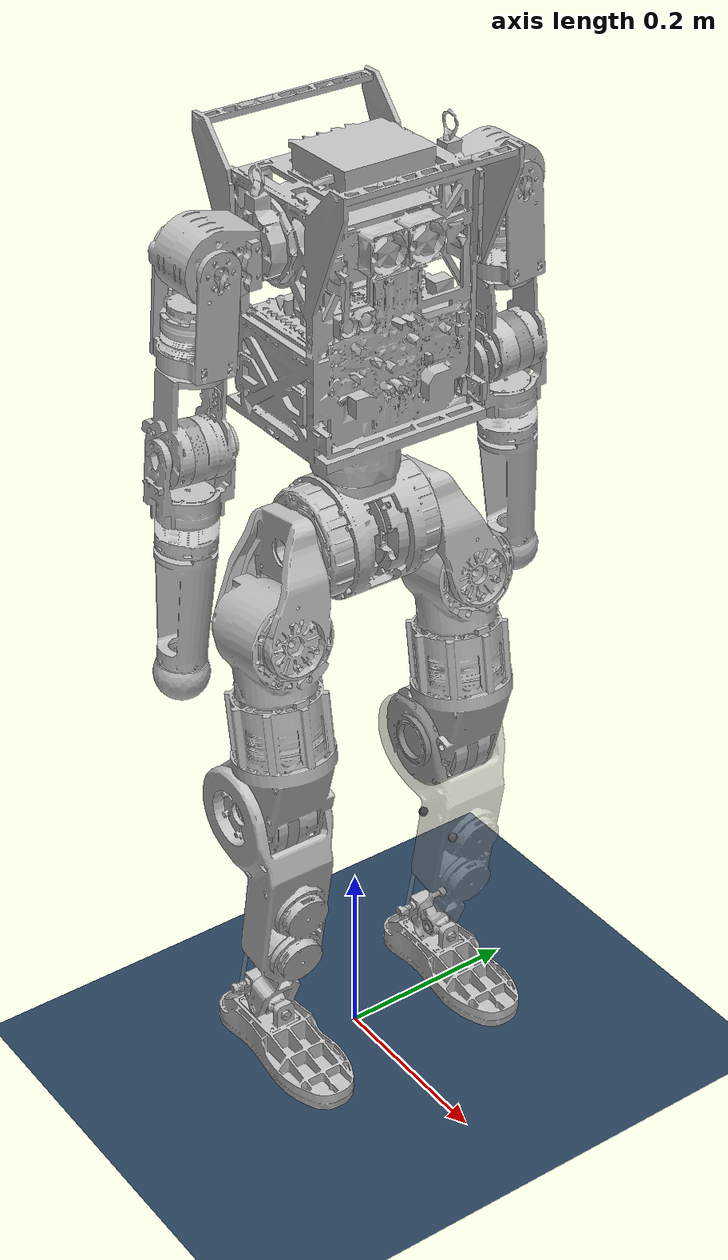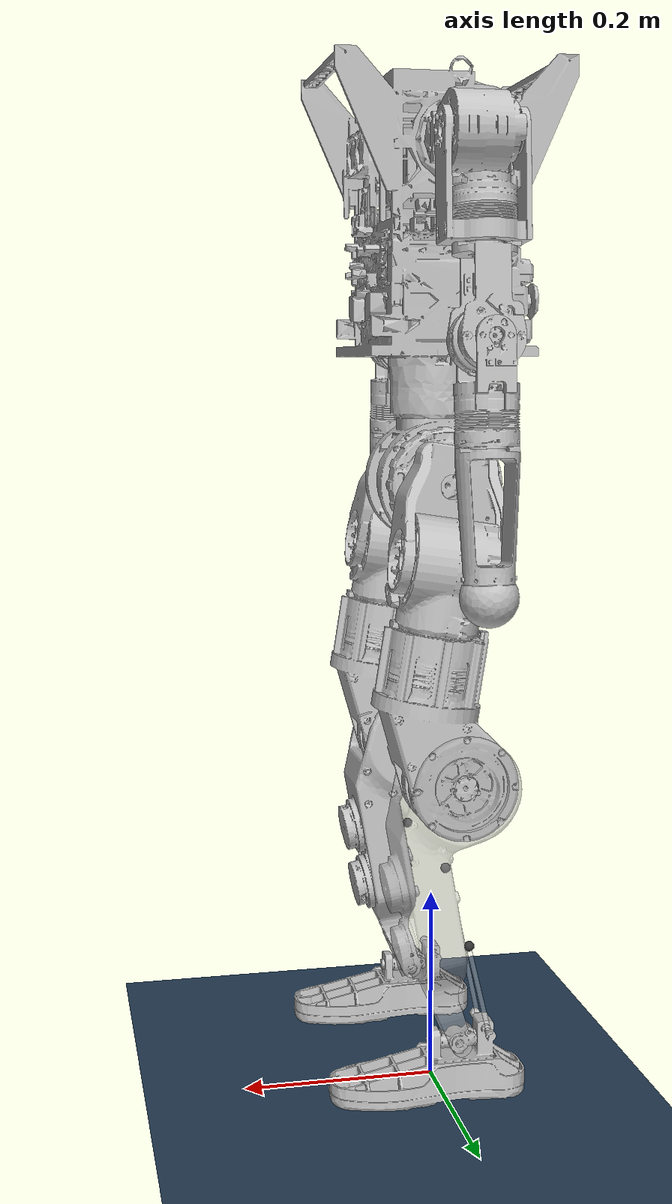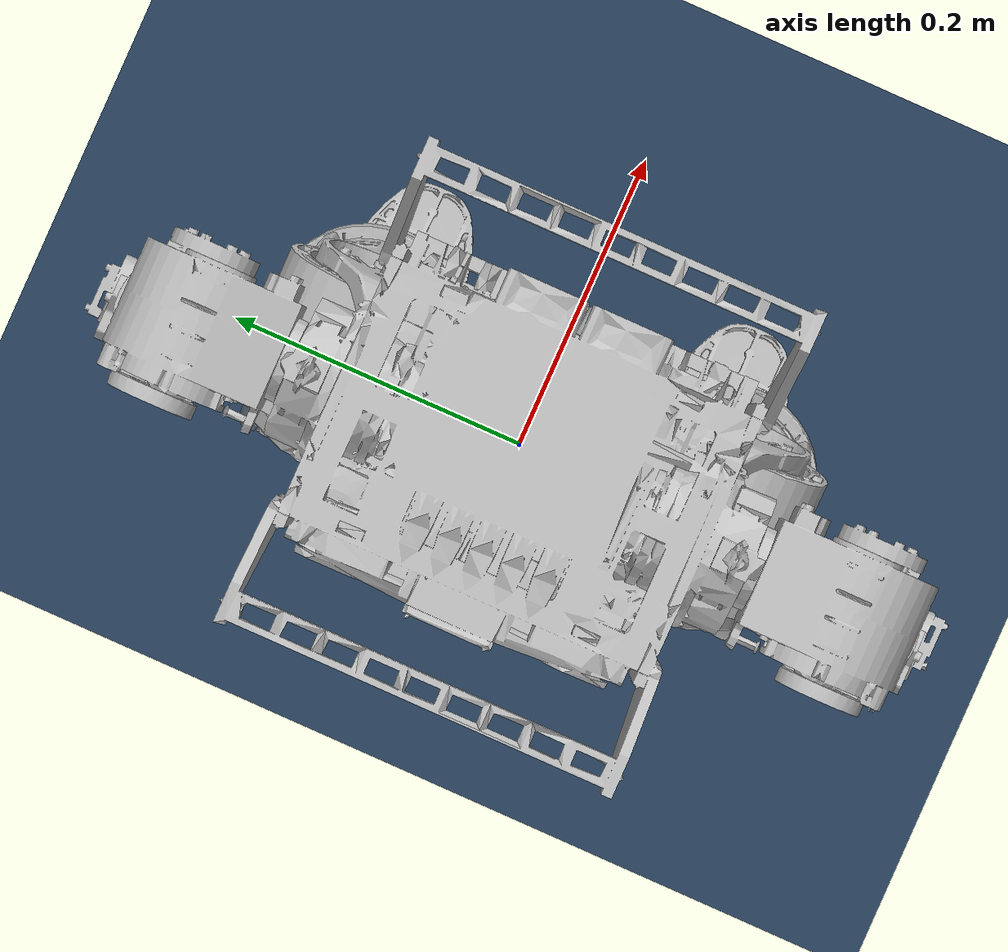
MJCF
<mujoco model="minim1 scene">
  <include file="Mini_M1v1_real.xml"/>

  <statistic center="0.5 0.5 1.2" extent="1.0"/>

  <visual>
    <headlight diffuse="0.6 0.6 0.6" ambient="0.3 0.3 0.3" specular="0 0 0"/>
    <rgba haze="0.15 0.25 0.35 1"/>
    <global azimuth="-130" elevation="-20"/>
  </visual>

  <asset>
    <texture type="skybox" builtin="gradient" rgb1="0.3 0.5 0.7" rgb2="0 0 0" width="512" height="3072"/>
    <texture type="2d" name="groundplane" builtin="checker" mark="edge" rgb1="0.2 0.3 0.4" rgb2="0.1 0.2 0.3"
      markrgb="0.8 0.8 0.8" width="300" height="300"/>
    <material name="groundplane" texture="groundplane" texuniform="true" texrepeat="5 5" reflectance="0.2"/>
  </asset>

  <worldbody>
    <light pos="0 0 1.5" dir="0 0 -1" directional="true"/>
    <geom name="floor" size="0 0 0.05" type="plane" material="groundplane" friction="1.0 0.01 0.001"/>
  </worldbody>
</mujoco>

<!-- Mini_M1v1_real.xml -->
<mujoco model="MiniV1-1_2">
  <compiler angle="radian" meshdir="meshes_reduce/" />
  <option timestep="0.0002" />
  <default>
    <default class="m2">
      <default class="visual">
        <geom type="mesh" contype="0" conaffinity="0" group="2" density="0" material="silver"/>
      </default>
      <default class="collision">
        <geom group="3" rgba="0.2 0.6 0.2 0.5" type="capsule" contype="1" conaffinity="1"/>
        <default class="foot_capsule">
          <geom type="capsule" size="0.01"/>
        </default>
      </default>
      <site group="5" rgba="1 0 0 1"/>
    </default>
  </default>
  <asset>
    <material name="silver" rgba="0.752941 0.752941 0.752941 1"/>
    <material name="black" rgba="0.3 0.3 0.3 1"/>

    <mesh name="pelvis_link" file="pelvis_link.STL" />

    <mesh name="left_hip_pitch_link" file="left_hip_pitch_link.STL" />
    <mesh name="left_hip_roll_link" file="left_hip_roll_link.STL" />
    <mesh name="left_hip_yaw_link" file="left_hip_yaw_link.STL" />
    <mesh name="left_knee_link" file="left_knee_link.STL" />
    <mesh name="left_ankle_pitch_link" file="left_ankle_pitch_link.STL" />
    <mesh name="left_ankle_roll_link" file="left_ankle_roll_link.STL" />

    <mesh name="right_hip_pitch_link" file="right_hip_pitch_link.STL" />
    <mesh name="right_hip_roll_link" file="right_hip_roll_link.STL" />
    <mesh name="right_hip_yaw_link" file="right_hip_yaw_link.STL" />
    <mesh name="right_knee_link" file="right_knee_link.STL" />
    <mesh name="right_ankle_pitch_link" file="right_ankle_pitch_link.STL" />
    <mesh name="right_ankle_roll_link" file="right_ankle_roll_link.STL" />

    <mesh name="torso_link" file="torso_link.STL" />
    <mesh name="left_shoulder_pitch_link" file="left_shoulder_pitch_link.STL" />
    <mesh name="left_shoulder_roll_link" file="left_shoulder_roll_link.STL" />
    <mesh name="left_shoulder_yaw_link" file="left_shoulder_yaw_link.STL" />
    <mesh name="left_elbow_link" file="left_elbow_link.STL" />
    <mesh name="left_wrist_yaw_link" file="left_wrist_yaw_link.STL"/>

    <mesh name="right_shoulder_pitch_link" file="right_shoulder_pitch_link.STL" />
    <mesh name="right_shoulder_roll_link" file="right_shoulder_roll_link.STL" />
    <mesh name="right_shoulder_yaw_link" file="right_shoulder_yaw_link.STL" />
    <mesh name="right_elbow_link" file="right_elbow_link.STL" />
    <mesh name="right_wrist_yaw_link" file="right_wrist_yaw_link.STL"/>
  </asset>

  <default>
    <default class="RS04_motor">
      <joint damping="0.05" armature="0.04" frictionloss="1.8" solimplimit="0.95 0.99 0.001" solreflimit="0.002 1"  limited="true" />
    </default>
    <default class="RS03_motor">
      <joint damping="0.05" armature="0.02"  frictionloss="0.9" solimplimit="0.95 0.99 0.001" solreflimit="0.002 1"  limited="true" />
    </default>
    <default class="RS06_motor">
      <joint damping="0.05" armature="0.012" frictionloss="0.5" solimplimit="0.95 0.99 0.001" solreflimit="0.002 1"  limited="true" />
    </default>
    <default class="RS00_motor">
      <joint damping="0.05" armature="0.001" frictionloss="0.15" solimplimit="0.95 0.99 0.001" solreflimit="0.002 1"  limited="true" />
    </default>
    <default class="RS05_motor">
      <joint damping="0.05" armature="0.0007" frictionloss="0.08" solimplimit="0.95 0.99 0.001" solreflimit="0.002 1"  limited="true" />
    </default>
    <default class="passive_joint">
      <joint damping="0.01" armature="0.0" frictionloss="0.0" solimplimit="0.95 0.99 0.001" solreflimit="0.002 1"  limited="true" />
    </default>
  </default>

  <worldbody>
    <body name="pelvis_link" pos="0 0 0.7" childclass="m2">
      <inertial pos="-7.04e-06 0 -0.0639753" quat="0.7057301 0.7046142 0.051838 -0.0526931" mass="3.256" diaginertia="0.0079273 0.0077761 0.0071866"/>
      <joint name="floating_base_joint" type="free" limited="false" actuatorfrclimited="false" />
      <geom class="visual" mesh="pelvis_link"/>
      <geom name="pelvis_collision" pos="0 0 -0.065" class="collision" type="sphere" size="0.065"/>

      <site name="imu" size="0.01" pos="0.0 0.0 -0.122" />

    <body name="left_hip_pitch_link" pos="0 0.0645 -0.06475">
      <inertial pos="0.0121766 0.0395787 -0.0603924" quat="0.8412368 -0.1359165 0.1585852 0.4986964" mass="1.599" diaginertia="0.0036854 0.0032082 0.0020596"/>
      <joint name="left_hip_pitch_joint" pos="0 0 0" axis="0 -1 0" range="-2.9105 2.67456" class="RS04_motor" />
      <geom class="visual" mesh="left_hip_pitch_link"/>

      <body name="left_hip_roll_link" pos="0.01176 0.0455 -0.074072" quat="0.9969032 0 -0.0786387 0">
        <inertial pos="-0.0003054 0 -0.0300273" quat="0.4975255 0.5024623 0.5024623 0.4975255" mass="0.43" diaginertia="0.0011643 0.0009877 0.0007031"/>
          <joint name="left_hip_roll_joint" pos="0 0 0" axis="-1 0 0" range="-2.26893 0.5236" class="RS04_motor" />
          <geom class="visual" mesh="left_hip_roll_link"/>
          <geom name="left_hip_collision" class="collision" size="0.045" fromto="0.00 0.0 0.005 0.00 0.0 -0.12"/>

          <body name="left_hip_yaw_link" pos="0 0 -0.076">
            <inertial pos="-0.0179351 -0.0003662 -0.0780697" quat="0.7166074 -0.1417192 -0.1565716 0.6647366" mass="2.65639" diaginertia="0.0111069 0.0105039 0.0035003"/>
            <joint name="left_hip_yaw_joint" pos="0 0 0" axis="0 0 1" range="-2.44346 2.44346" class="RS03_motor" />
            <geom class="visual" mesh="left_hip_yaw_link"/>
            <geom name="left_thigh_collision" pos="0.022 0.0 -0.11" euler ="0 0.5 0" class="collision" type="box" size="0.005 0.03 0.03" />

            <body name="left_knee_link" pos="-0.045 0 -0.13245" quat="0.9969032 0 0.0786387 0">
              <inertial pos="0.0218609 0 -0.0908802" quat="0.9995181 -0.0007215 0.0308954 -0.002931" mass="2.25568" diaginertia="0.013668 0.013413 0.0027884"/>
              <joint name="left_knee_joint" pos="0 0 0" axis="0 -1 0" range="-2.70526 0.19199" class="RS04_motor" />
              <geom class="visual" mesh="left_knee_link" rgba="0.7 0.7 0.7 0.5"/>
              <geom name="left_knee_collision" euler="1.5707 0 0" class="collision" type="cylinder" size="0.048 0.045"/>
              <geom name="left_knee_collision2" pos="0.052 0 -0.04" euler="0 0.2 0" class="collision" type="box" size="0.005 0.042 0.015"/>
              <geom name="left_shin_collision" class="collision" size="0.042" fromto="0.035 0.0 -0.095 0.018 0.0 -0.18"/>
              <geom name="left_shin_collision2" class="collision" size="0.02" fromto="0.0065 0.0 -0.245 0.0045 0.0 -0.26"/>

              <body name="left_ankle_motor_1_link" pos="0.00603711 0.0 -0.09401987" quat = "-0.02128223 0.99596734 -0.00186195 -0.08713585" >
                <inertial pos="0 0 0" quat="1 0 0 0" mass="0.05" diaginertia="1e-05 1e-05 1e-05"/>
                <joint name="left_ankle_motor_1_joint" pos="0 0 0" axis="1 0 0" range="-1.055 2" class="RS06_motor"/>
                <geom name="left_anchor_point_1" contype="0" conaffinity="0" size="0.005" pos="0.0 0.025 0.0" rgba="0.2 0.2 0.2 1" />
                <body name="left_ankle_long_rod" pos="0 0.02 0" quat = "0.70656452 -0.00258065 -0.0276871 -0.70710207">
                  <joint name="left-anchor_joint_1" pos="0.0 0.0 0.0" type="ball" damping="0.0" />
                  <geom type="cylinder" contype="0" conaffinity="0" size="0.0025 0.08" pos = "0.0 0.0 0.08" rgba="1 1 1 0.3"/>
                </body>
              </body>

              <body name="left_ankle_motor_2_link" pos="-0.00543289 0.0 -0.15900987" quat = "0.99586461 -0.02564267 0.08712686 0.00224344" >
                <inertial pos="0 0 0" quat="1 0 0 0" mass="0.05" diaginertia="1e-05 1e-05 1e-05"/>
                <joint name="left_ankle_motor_2_joint" pos="0 0 0" axis="1 0 0" range="-2 1.029" class="RS06_motor"/>
                <geom name="left_anchor_point_2" contype="0" conaffinity="0" size="0.005" pos="0.0 0.025  0.0" rgba="0.2 0.2 0.2 1" />
                <body name="left_ankle_short_rod" pos="-0.0 0.02 0" quat = "-0.00279279 -0.70601341 0.70710127 0.03930729">
                  <joint name="left-anchor_joint_2" pos="0.0 0.0 0.0" type="ball" damping="0.0"/>
                  <geom type="cylinder" contype="0" conaffinity="0" size="0.0025 0.048" pos = "0.0 0.0 0.048" rgba="1 1 1 0.3"/>
                </body>
              </body>

              <body name="left_ankle_pitch_link" pos="0 0 -0.265">
                <inertial pos="0 0 0" quat="0 0.7071068 0 0.7071068" mass="0.07679" diaginertia="1.292e-05 1.214e-05 4.67e-06"/>
                <joint name="left_ankle_pitch_joint" pos="0 0 0" axis="0 1 0" range="-0.87266 0.5236" class="passive_joint" />
                <geom class="visual" mesh="left_ankle_pitch_link"/>

                <body name="left_ankle_roll_link">
                  <inertial pos="-0.0003431 0 -0.0205564" quat="0.5506354 0.4436072 0.4437003 0.5505846" mass="0.62798" diaginertia="0.0008024 0.0007779 0.0002549"/>
                  <joint name="left_ankle_roll_joint" pos="0 0 0" axis="1 0 0" range="-0.2618 0.2618" class="passive_joint"/>
                  <geom class="visual" mesh="left_ankle_roll_link"/>
                  <geom name="left_foot1_collision" class="foot_capsule" fromto="-0.05 -0.018 -0.035 0.08 -0.018 -0.035"/>
                  <geom name="left_foot2_collision" class="foot_capsule" fromto="-0.05 -0.009 -0.035 0.085 -0.009 -0.035"/>
                  <geom name="left_foot3_collision" class="foot_capsule" fromto="-0.05 0.0 -0.035 0.085 0.0 -0.035"/>
                  <geom name="left_foot4_collision" class="foot_capsule" fromto="-0.05 0.009 -0.035 0.085 0.009 -0.035"/>
                  <geom name="left_foot5_collision" class="foot_capsule" fromto="-0.05 0.018 -0.035 0.08 0.018 -0.035"/>
                </body>
              </body>
            </body>
          </body>
        </body>
      </body>
      <body name="right_hip_pitch_link" pos="0 -0.0645 -0.06475">
        <inertial pos="0.0121766 -0.0395787 -0.0603924" quat="0.4939296 0.1578684 -0.1367706 0.8440408" mass="1.599" diaginertia="0.0037011 0.0032296 0.0020721"/>
        <joint name="right_hip_pitch_joint" pos="0 0 0" axis="0 1 0" range="-2.67419 2.91086" class="RS04_motor" />
        <geom class="visual" mesh="right_hip_pitch_link"/>

        <body name="right_hip_roll_link" pos="0.01176 -0.0455 -0.074072" quat="0.9969032 0 -0.0786387 0">
          <inertial pos="-0.0003054 0 -0.0300273" quat="0.4975255 0.5024623 0.5024623 0.4975255" mass="0.43" diaginertia="0.0011643 0.0009877 0.0007031"/>
          <joint name="right_hip_roll_joint" pos="0 0 0" axis="-1 0 0" range="-0.5236 2.26893" class="RS04_motor" />
          <geom class="visual" mesh="right_hip_roll_link"/>
          <geom name="right_hip_collision" class="collision" size="0.045" fromto="0.00 0.0 0.005 0.00 0.0 -0.12"/>

          <body name="right_hip_yaw_link" pos="0 0 -0.076">
            <inertial pos="-0.0179351 -0.0003662 -0.0780697" quat="0.7166074 -0.1417192 -0.1565716 0.6647366" mass="2.65639" diaginertia="0.0111069 0.0105039 0.0035003"/>
            <joint name="right_hip_yaw_joint" pos="0 0 0" axis="0 0 1" range="-2.44346 2.44346" class="RS03_motor" />
            <geom class="visual" mesh="right_hip_yaw_link"/>
            <geom name="right_thigh_collision" pos="0.022 0.0 -0.11" euler ="0 0.5 0" class="collision" type="box" size="0.005 0.03 0.03" />

            <body name="right_knee_link" pos="-0.045 0 -0.13245" quat="0.9969032 0 0.0786387 0">
              <inertial pos="0.0218594 0 -0.0908886" quat="0.9995192 0.0007193 0.0308614 0.002915" mass="2.25568" diaginertia="0.0137054 0.0134502 0.0028247"/>
              <joint name="right_knee_joint" pos="0 0 0" axis="0 1 0" range="-0.19199 2.70526" class="RS04_motor" />
              <geom class="visual" mesh="right_knee_link"/>
              <geom name="right_knee_collision" euler="1.5707 0 0" class="collision" type="cylinder" size="0.048 0.045"/>
              <geom name="right_knee_collision2" pos="0.052 0 -0.04" euler="0 0.2 0" class="collision" type="box" size="0.005 0.042 0.015"/>
              <geom name="right_shin_collision" class="collision" size="0.042" fromto="0.035 0.0 -0.095 0.018 0.0 -0.18"/>
              <geom name="right_shin_collision2" class="collision" size="0.02" fromto="0.0065 0.0 -0.245 0.0045 0.0 -0.26"/>

              <body name="right_ankle_motor_1_link" pos="0.00603711 0.0 -0.09401987" quat = "0.99596734 -0.02128223 0.08713585 0.00186195" >
                <inertial pos="0 0 0" quat="1 0 0 0" mass="0.05" diaginertia="1e-05 1e-05 1e-05"/>
                <joint name="right_ankle_motor_1_joint" pos="0 0 0" axis="1 0 0" range="-1.6 1.0" class="RS06_motor"/>
                <geom name="right_anchor_point_1" contype="0" conaffinity="0" size="0.005" pos="0.0 0.025 0.0" rgba="0.2 0.2 0.2 1" />
                <body name="right_ankle_long_rod" pos="0.0 0.02 0.0" quat = "0.00258065 -0.70656452 0.70710207 0.0276871">
                  <joint name="right-anchor_joint_1" pos="0.0 0.0 0.0"  type="ball" damping="0.0"/>
                  <geom type="cylinder" contype="0" conaffinity="0" size="0.0025 0.08" pos="0.0 0.0 0.08" rgba="1 1 1 0.3"/>
                </body>
              </body>

              <body name="right_ankle_motor_2_link" pos="-0.00543289 0.0 -0.15900987" quat = "-0.02564267 0.99586461 -0.00224344 -0.08712686">
                <inertial pos="0 0 0" quat="1 0 0 0" mass="0.05" diaginertia="1e-05 1e-05 1e-05"/>
                <joint name="right_ankle_motor_2_joint" pos="0 0 0" axis="1 0 0" range="-1.0 1.6" class="RS06_motor"/>
                <geom name="right_anchor_point_2" contype="0" conaffinity="0" size="0.005" pos="0.0 0.025  0.0" rgba="0.2 0.2 0.2 1" />
                <body name="right_ankle_short_rod" pos="0.0 0.02 0.0" quat = "0.70601341 0.00279279 -0.03930729 -0.70710127">
                  <joint name="right-anchor_joint_2" pos="0.0 0.0 0.0" type="ball" damping="0.0"/>
                  <geom type="cylinder" contype="0" conaffinity="0" size="0.0025 0.048" pos = "0.0 0.0 0.048" rgba="1 1 1 0.3"/>
                </body>
              </body>

              <body name="right_ankle_pitch_link" pos="0 0 -0.265">
                <inertial pos="0 0 0" quat="0 0.7071068 0 0.7071068" mass="0.07679" diaginertia="1.292e-05 1.214e-05 4.67e-06"/>
                <joint name="right_ankle_pitch_joint" pos="0 0 0" axis="0 1 0" range="-0.87266 0.5236" class="passive_joint"/>
                <geom class="visual" mesh="right_ankle_pitch_link"/>

                <body name="right_ankle_roll_link">
                  <inertial pos="-0.0003427 0 -0.0205569" quat="0.5506331 0.4436453 0.443674 0.5505774" mass="0.62797" diaginertia="0.0008024 0.0007779 0.0002548"/>
                  <joint name="right_ankle_roll_joint" pos="0 0 0" axis="1 0 0" range="-0.2618 0.2618" class="passive_joint"/>
                  <geom class="visual" mesh="right_ankle_roll_link"/>
                  <geom name="right_foot1_collision" class="foot_capsule" fromto="-0.05 -0.018 -0.035 0.08 -0.018 -0.035"/>
                  <geom name="right_foot2_collision" class="foot_capsule" fromto="-0.05 -0.009 -0.035 0.085 -0.009 -0.035"/>
                  <geom name="right_foot3_collision" class="foot_capsule" fromto="-0.05 0.0 -0.035 0.085 0.0 -0.035"/>
                  <geom name="right_foot4_collision" class="foot_capsule" fromto="-0.05 0.009 -0.035 0.085 0.009 -0.035"/>
                  <geom name="right_foot5_collision" class="foot_capsule" fromto="-0.05 0.018 -0.035 0.08 0.018 -0.035"/>
                </body>
              </body>
            </body>
          </body>
        </body>
      </body>
      <body name="torso_link" pos="0 0 0">
        <inertial pos="-0.0057874 -0.0001375 0.1582107" quat="0.9998963 -0.0006793 -0.0143572 -0.0009131" mass="7.957" diaginertia="0.0799016 0.0676421 0.0259355"/>
        <joint name="waist_joint" pos="0 0 0" axis="0 0 -1" range="-2.79252 2.79252" class="RS03_motor" />
        <geom class="visual" mesh="torso_link"/>
        <geom name="torso_collision" class="collision" type="box" size="0.08 0.1 0.125" pos="0 0 0.185"/>
        <geom name="torso_connect_collision" class="collision" type="cylinder" size="0.05 0.025" pos="0 0 0.03"/>

        <body name="left_shoulder_pitch_link" pos="0 0.1145 0.262">
          <inertial pos="-0.0016388 0.0465983 9.687e-05" quat="0.5512101 0.422823 -0.5669166 0.4427117" mass="0.815" diaginertia="0.0003775 0.0003006 0.0002276"/>
          <joint name="left_shoulder_pitch_joint" pos="0 0 0" axis="0 -1 0" range="-2.44346 3.14159" class="RS06_motor" />
          <geom class="visual" mesh="left_shoulder_pitch_link"/>

          <body name="left_shoulder_roll_link" pos="0 0.0525 0" quat="0.999229 0.0392599 0 0">
            <inertial pos="-0.0037489 0 -0.0677716" quat="0.703235 -0.074283 -0.0744955 0.7031308" mass="0.908" diaginertia="0.0006071 0.0004896 0.0002621"/>
            <joint name="left_shoulder_roll_joint" pos="0 0 0" axis="-1 0 0" range="-3.35103 0.20944" class="RS06_motor" />
            <geom class="visual" mesh="left_shoulder_roll_link"/>

            <body name="left_shoulder_yaw_link" pos="-0.00445 0 -0.1005">
              <inertial pos="-0.0001083 0.002638 -0.0736062" quat="0.9999795 0.0028441 -0.0056822 -0.0008463" mass="1.043" diaginertia="0.0010392 0.00091 0.0003354"/>
              <joint name="left_shoulder_yaw_joint" pos="0 0 0" axis="0 0 1" range="-2.44346 2.44346" class="RS06_motor" />
              <geom class="visual" mesh="left_shoulder_yaw_link"/>
              <geom name="left_shoulder_yaw_collision" class="collision" size="0.031" fromto="0.00 0.0 -0.085 0.00 0.0 0.1"/>

              <body name="left_elbow_link" pos="0 0 -0.08575">
                <inertial pos="-0.0001013 0.0008858 -0.0659587" quat="0.9929388 0.1185092 -0.00443 0.0028945" mass="0.573" diaginertia="0.0004153 0.0003379 0.0001735"/>
                <joint name="left_elbow_joint" pos="0 0 0" axis="0 -1 0" range="-1.5708 2.26893" class="RS06_motor" />
                <geom class="visual" mesh="left_elbow_link"/>
                <geom name="left_elbow_yaw_collision" class="collision" size="0.022" fromto="0.0 0.0 -0.23 0.0 0.0 -0.06"/>

                <body name="left_wrist_yaw_link" pos="0 0 -0.09975">
                  <inertial pos="0.0002026 0 -0.0650613" quat="0.707104 -0.0019687 -0.0019687 0.707104" mass="0.422" diaginertia="0.0012001 0.0011344 0.0001592"/>
                  <joint name="left_wrist_yaw_joint" pos="0 0 0" axis="0 0 1" range="-2.44346 2.44346" class="RS06_motor"/>
                  <geom class="visual" mesh="left_wrist_yaw_link"/>
                </body>
              </body>
            </body>
          </body>
        </body>

        <body name="right_shoulder_pitch_link" pos="0 -0.1145 0.262">
          <inertial pos="-0.0016388 -0.0465983 9.687e-05" quat="0.4222955 0.5506507 -0.4432103 0.5674636" mass="0.815" diaginertia="0.0003775 0.0003006 0.0002276"/>
          <joint name="right_shoulder_pitch_joint" pos="0 0 0" axis="0 1 0" range="-3.14159 2.44346" class="RS06_motor" />
          <geom class="visual" mesh="right_shoulder_pitch_link"/>

          <body name="right_shoulder_roll_link" pos="0 -0.0525 0" quat="0.999229 -0.0392599 0 0">
            <inertial pos="-0.0037489 0 -0.0677716" quat="0.703235 -0.074283 -0.0744955 0.7031308" mass="0.908" diaginertia="0.0006071 0.0004896 0.0002621"/>
            <joint name="right_shoulder_roll_joint" pos="0 0 0" axis="-1 0 0" range="-0.20944 3.35103" class="RS06_motor" />
            <geom class="visual" mesh="right_shoulder_roll_link"/>

            <body name="right_shoulder_yaw_link" pos="-0.00445 0 -0.1005">
              <inertial pos="-0.0001083 -0.002638 -0.0736062" quat="0.9999799 -0.0028377 -0.0056765 7.281162e-05" mass="1.043" diaginertia="0.0010392 0.00091 0.0003354"/>
              <joint name="right_shoulder_yaw_joint" pos="0 0 0" axis="0 0 1" range="-2.44346 2.44346" class="RS06_motor" />
              <geom class="visual" mesh="right_shoulder_yaw_link"/>
              <geom name="right_shoulder_yaw_collision" class="collision" size="0.031" fromto="0.00 0.0 -0.085 0.00 0.0 0.1"/>

              <body name="right_elbow_link" pos="0 0 -0.08575">
                <inertial pos="-0.0001013 -0.0008858 -0.0659587" quat="0.9929399 -0.1185121 -0.0041907 -0.0027548" mass="0.573" diaginertia="0.0004153 0.0003379 0.0001735"/>
                <joint name="right_elbow_joint" pos="0 0 0" axis="0 1 0" range="-2.26893 1.5708" class="RS06_motor" />
                <geom class="visual" mesh="right_elbow_link"/>
                <geom name="right_elbow_yaw_collision" class="collision" size="0.022" fromto="0.0 0.0 -0.23 0.0 0.0 -0.06"/>

                <body name="right_wrist_yaw_link" pos="0 0 -0.09975">
                  <inertial pos="0.0002026 0 -0.0650613" quat="0.707104 -0.0019687 -0.0019687 0.707104" mass="0.422" diaginertia="0.0012001 0.0011344 0.0001592"/>
                  <joint name="right_wrist_yaw_joint" pos="0 0 0" axis="0 0 1" range="-2.44346 2.44346" class="RS06_motor"/>
                  <geom class="visual" mesh="right_wrist_yaw_link"/>
                </body>
              </body>
            </body>
          </body>
        </body>

      </body>
    </body>

  </worldbody>

  <equality>
    <connect body2="left_ankle_short_rod" body1="left_ankle_roll_link" anchor="-0.02819078 0.02 0.0102606" solref="0.0001 1"/>
    <connect body2="left_ankle_long_rod" body1="left_ankle_roll_link" anchor="-0.02819078 -0.02 0.0102606" solref="0.0001 1"/>

    <connect body2="right_ankle_short_rod" body1="right_ankle_roll_link" anchor="-0.02819078 -0.02 0.0102606" solref="0.0001 1"/>
    <connect body2="right_ankle_long_rod" body1="right_ankle_roll_link" anchor="-0.02819078 0.02 0.0102606" solref="0.0001 1"/>
  </equality>

  <actuator>
    <motor name="left_hip_pitch" joint="left_hip_pitch_joint" ctrlrange="-130 130" />
    <motor name="left_hip_roll" joint="left_hip_roll_joint" ctrlrange="-132 132" />
    <motor name="left_hip_yaw" joint="left_hip_yaw_joint" ctrlrange="-70 70" />
    <motor name="left_knee" joint="left_knee_joint" ctrlrange="-130 130" />
    <motor name="left_ankle_motor_1_joint" joint="left_ankle_motor_1_joint" ctrlrange="-36 36" />
    <motor name="left_ankle_motor_2_joint" joint="left_ankle_motor_2_joint" ctrlrange="-36 36" />

    <motor name="right_hip_pitch" joint="right_hip_pitch_joint" ctrlrange="-130 130" />
    <motor name="right_hip_roll" joint="right_hip_roll_joint" ctrlrange="-132 132" />
    <motor name="right_hip_yaw" joint="right_hip_yaw_joint" ctrlrange="-70 70" />
    <motor name="right_knee" joint="right_knee_joint" ctrlrange="-130 130" />
    <motor name="right_ankle_motor_1_joint" joint="right_ankle_motor_1_joint" ctrlrange="-36 36" />
    <motor name="right_ankle_motor_2_joint" joint="right_ankle_motor_2_joint" ctrlrange="-36 36" />

    <motor name="waist" joint="waist_joint" ctrlrange="-70 70" />

    <motor name="left_shoulder_pitch" joint="left_shoulder_pitch_joint" ctrlrange="-36 36" />
    <motor name="left_shoulder_roll" joint="left_shoulder_roll_joint" ctrlrange="-36 36" />
    <motor name="left_shoulder_yaw" joint="left_shoulder_yaw_joint" ctrlrange="-36 36" />
    <motor name="left_elbow" joint="left_elbow_joint" ctrlrange="-36 36" />
    <motor name="left_wrist_yaw" joint="left_wrist_yaw_joint" ctrlrange="-36 36" />

    <motor name="right_shoulder_pitch" joint="right_shoulder_pitch_joint" ctrlrange="-36 36" />
    <motor name="right_shoulder_roll" joint="right_shoulder_roll_joint" ctrlrange="-36 36" />
    <motor name="right_shoulder_yaw" joint="right_shoulder_yaw_joint" ctrlrange="-36 36" />
    <motor name="right_elbow" joint="right_elbow_joint" ctrlrange="-36 36" />
    <motor name="right_wrist_yaw" joint="right_wrist_yaw_joint" ctrlrange="-36 36" />

  </actuator>

  <sensor>
    <jointpos name="left_hip_pitch_pos" joint="left_hip_pitch_joint" />
    <jointpos name="left_hip_roll_pos" joint="left_hip_roll_joint" />
    <jointpos name="left_hip_yaw_pos" joint="left_hip_yaw_joint" />
    <jointpos name="left_knee_pos" joint="left_knee_joint" />
    <jointpos name="left_ankle_motor_1_pos" joint="left_ankle_motor_1_joint" />
    <jointpos name="left_ankle_motor_2_pos" joint="left_ankle_motor_2_joint" />
    <jointpos name="right_hip_pitch_pos" joint="right_hip_pitch_joint" />
    <jointpos name="right_hip_roll_pos" joint="right_hip_roll_joint" />
    <jointpos name="right_hip_yaw_pos" joint="right_hip_yaw_joint" />
    <jointpos name="right_knee_pos" joint="right_knee_joint" />
    <jointpos name="right_ankle_motor_1_pos" joint="right_ankle_motor_1_joint" />
    <jointpos name="right_ankle_motor_2_pos" joint="right_ankle_motor_2_joint" />
    <jointpos name="waist_pos" joint="waist_joint" />
    <jointpos name="left_shoulder_pitch_pos" joint="left_shoulder_pitch_joint" />
    <jointpos name="left_shoulder_roll_pos" joint="left_shoulder_roll_joint" />
    <jointpos name="left_shoulder_yaw_pos" joint="left_shoulder_yaw_joint" />
    <jointpos name="left_elbow_pos" joint="left_elbow_joint" />
    <jointpos name="left_wrist_yaw_pos" joint="left_wrist_yaw_joint" />
    <jointpos name="right_shoulder_pitch_pos" joint="right_shoulder_pitch_joint" />
    <jointpos name="right_shoulder_roll_pos" joint="right_shoulder_roll_joint" />
    <jointpos name="right_shoulder_yaw_pos" joint="right_shoulder_yaw_joint" />
    <jointpos name="right_elbow_pos" joint="right_elbow_joint" />
    <jointpos name="right_wrist_yaw_pos" joint="right_wrist_yaw_joint" />

    <jointvel name="left_hip_pitch_vel" joint="left_hip_pitch_joint" />
    <jointvel name="left_hip_roll_vel" joint="left_hip_roll_joint" />
    <jointvel name="left_hip_yaw_vel" joint="left_hip_yaw_joint" />
    <jointvel name="left_knee_vel" joint="left_knee_joint" />
    <jointvel name="left_ankle_motor_1_vel" joint="left_ankle_motor_1_joint" />
    <jointvel name="left_ankle_motor_2_vel" joint="left_ankle_motor_2_joint" />
    <jointvel name="right_hip_pitch_vel" joint="right_hip_pitch_joint" />
    <jointvel name="right_hip_roll_vel" joint="right_hip_roll_joint" />
    <jointvel name="right_hip_yaw_vel" joint="right_hip_yaw_joint" />
    <jointvel name="right_knee_vel" joint="right_knee_joint" />
    <jointvel name="right_ankle_motor_1_vel" joint="right_ankle_motor_1_joint" />
    <jointvel name="right_ankle_motor_2_vel" joint="right_ankle_motor_2_joint" />
    <jointvel name="waist_vel" joint="waist_joint" />
    <jointvel name="left_shoulder_pitch_vel" joint="left_shoulder_pitch_joint" />
    <jointvel name="left_shoulder_roll_vel" joint="left_shoulder_roll_joint" />
    <jointvel name="left_shoulder_yaw_vel" joint="left_shoulder_yaw_joint" />
    <jointvel name="left_elbow_vel" joint="left_elbow_joint" />
    <jointvel name="left_wrist_yaw_vel" joint="left_wrist_yaw_joint" />
    <jointvel name="right_shoulder_pitch_vel" joint="right_shoulder_pitch_joint" />
    <jointvel name="right_shoulder_roll_vel" joint="right_shoulder_roll_joint" />
    <jointvel name="right_shoulder_yaw_vel" joint="right_shoulder_yaw_joint" />
    <jointvel name="right_elbow_vel" joint="right_elbow_joint" />
    <jointvel name="right_wrist_yaw_vel" joint="right_wrist_yaw_joint" />

    <jointactuatorfrc name="left_hip_pitch_torque" joint="left_hip_pitch_joint" />
    <jointactuatorfrc name="left_hip_roll_torque" joint="left_hip_roll_joint" />
    <jointactuatorfrc name="left_hip_yaw_torque" joint="left_hip_yaw_joint" />
    <jointactuatorfrc name="left_knee_torque" joint="left_knee_joint" />
    <jointactuatorfrc name="left_ankle_motor_1_torque" joint="left_ankle_motor_1_joint" />
    <jointactuatorfrc name="left_ankle_motor_2_torque" joint="left_ankle_motor_2_joint" />
    <jointactuatorfrc name="right_hip_pitch_torque" joint="right_hip_pitch_joint" />
    <jointactuatorfrc name="right_hip_roll_torque" joint="right_hip_roll_joint" />
    <jointactuatorfrc name="right_hip_yaw_torque" joint="right_hip_yaw_joint" />
    <jointactuatorfrc name="right_knee_torque" joint="right_knee_joint" />
    <jointactuatorfrc name="right_ankle_motor_1_torque" joint="right_ankle_motor_1_joint" />
    <jointactuatorfrc name="right_ankle_motor_2_torque" joint="right_ankle_motor_2_joint" />
    <jointactuatorfrc name="waist_torque" joint="waist_joint" />
    <jointactuatorfrc name="left_shoulder_pitch_torque" joint="left_shoulder_pitch_joint" />
    <jointactuatorfrc name="left_shoulder_roll_torque" joint="left_shoulder_roll_joint" />
    <jointactuatorfrc name="left_shoulder_yaw_torque" joint="left_shoulder_yaw_joint" />
    <jointactuatorfrc name="left_elbow_torque" joint="left_elbow_joint" />
    <jointactuatorfrc name="left_wrist_yaw_torque" joint="left_wrist_yaw_joint" />
    <jointactuatorfrc name="right_shoulder_pitch_torque" joint="right_shoulder_pitch_joint" />
    <jointactuatorfrc name="right_shoulder_roll_torque" joint="right_shoulder_roll_joint" />
    <jointactuatorfrc name="right_shoulder_yaw_torque" joint="right_shoulder_yaw_joint" />
    <jointactuatorfrc name="right_elbow_torque" joint="right_elbow_joint" />
    <jointactuatorfrc name="right_wrist_yaw_torque" joint="right_wrist_yaw_joint" />

    <framequat name="imu_quat" objtype="site" objname="imu" />
    <gyro name="imu_gyro" site="imu" />
    <accelerometer name="imu_acc" site="imu" />

    <framepos name="frame_pos" objtype="site" objname="imu" />
    <framelinvel name="frame_vel" objtype="site" objname="imu" />
  </sensor>

  <!-- for unit test -->

</mujoco>
